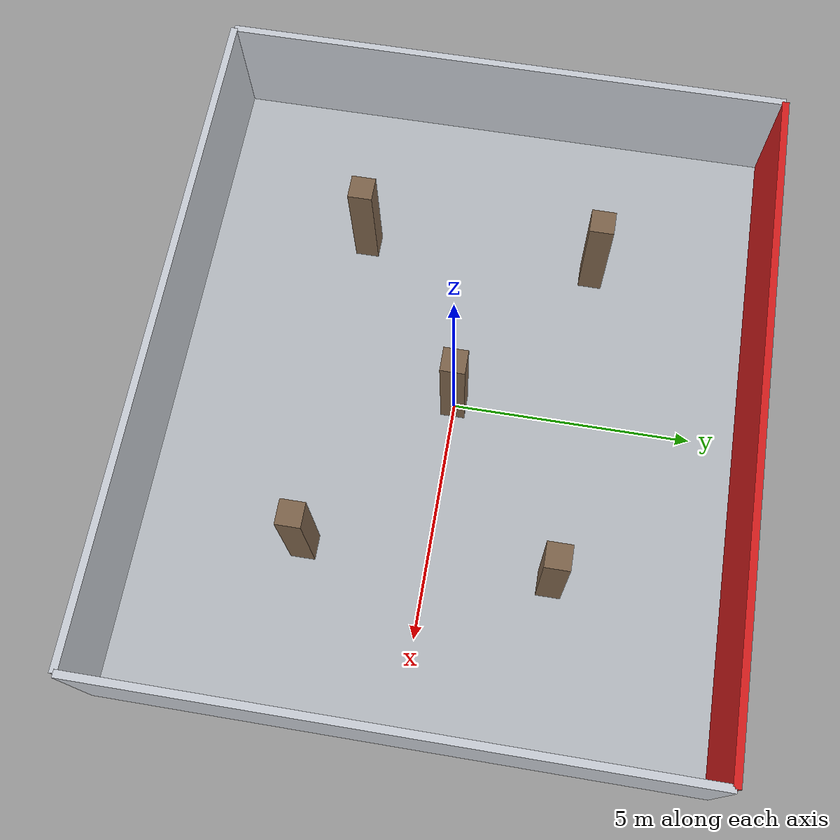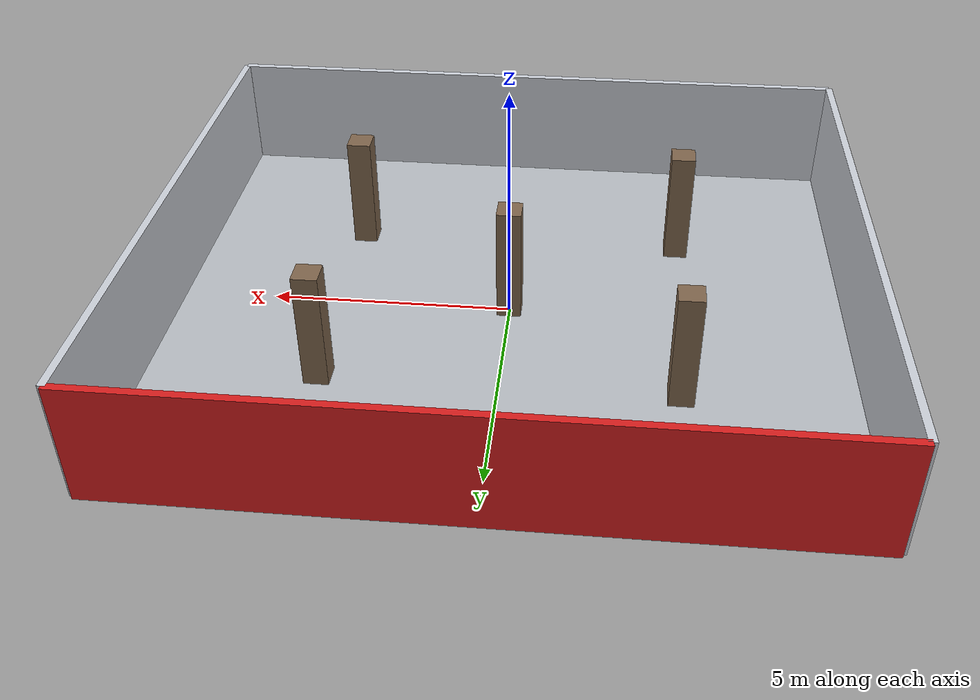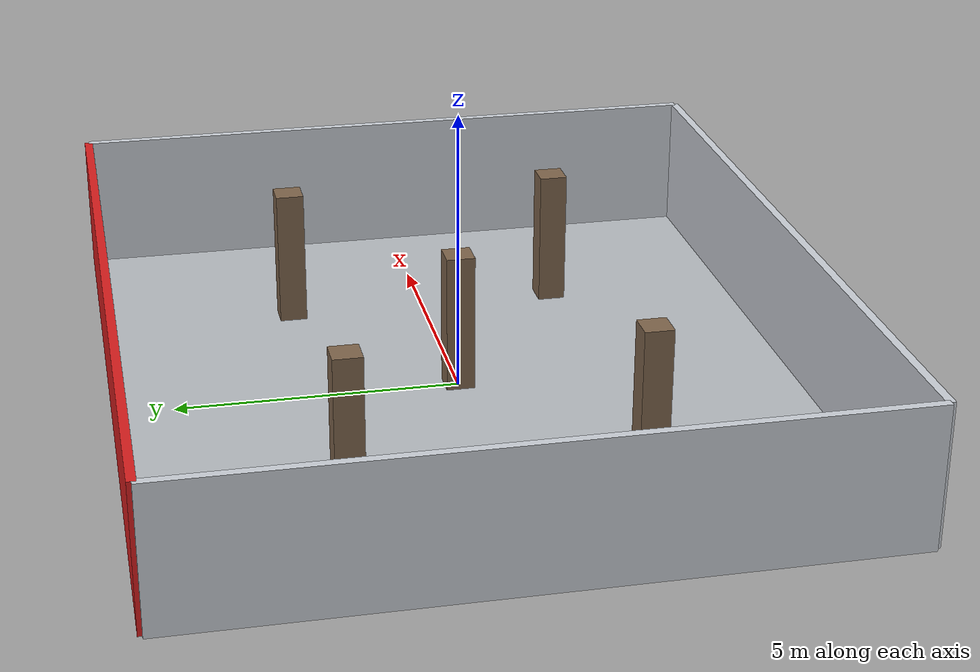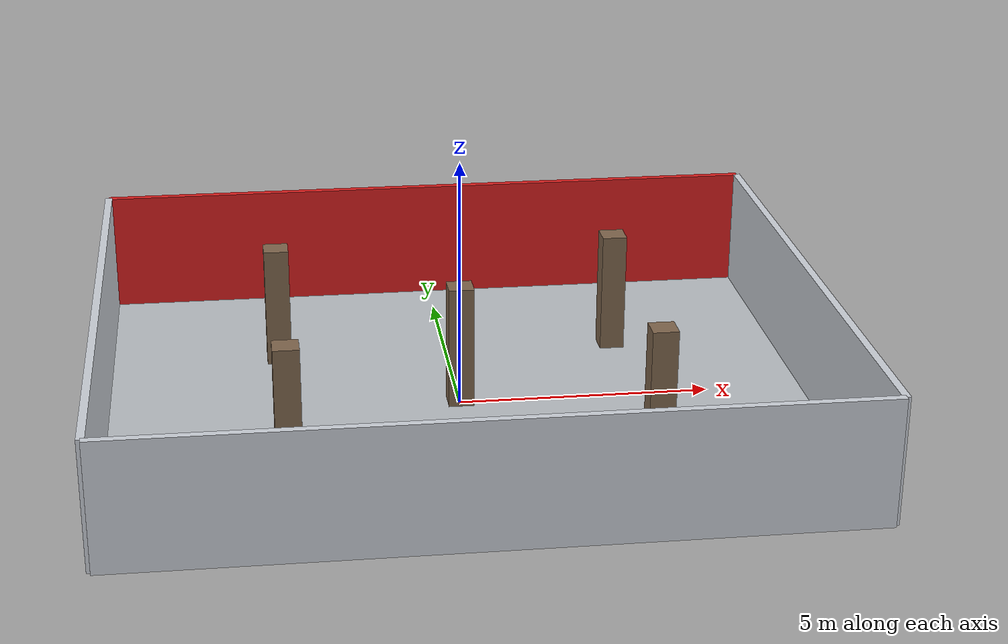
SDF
<sdf version="1.9">
 <world name="open_hall_columns">
  <physics name="1ms" type="ignored">
   <max_step_size>0.001</max_step_size>
   <real_time_factor>1.0</real_time_factor>
  </physics>
  <plugin filename="gz-sim-physics-system" name="gz::sim::systems::Physics"/>
  <plugin filename="gz-sim-scene-broadcaster-system" name="gz::sim::systems::SceneBroadcaster"/>
  <plugin filename="gz-sim-user-commands-system" name="gz::sim::systems::UserCommands"/>
  <plugin filename="gz-sim-sensors-system" name="gz::sim::systems::Sensors">
   <render_engine>ogre2</render_engine>
  </plugin>
  <plugin filename="gz-sim-imu-system" name="gz::sim::systems::Imu"/>
  <plugin filename="gz-sim-navsat-system" name="gz::sim::systems::NavSat"/>
  <spherical_coordinates>
   <latitude_deg>-35.363262</latitude_deg>
   <longitude_deg>149.165237</longitude_deg>
   <elevation>584.0</elevation>
   <heading_deg>0</heading_deg>
   <surface_model>EARTH_WGS84</surface_model>
  </spherical_coordinates>
  <light type="directional" name="main_light">
   <cast_shadows>false</cast_shadows>
   <pose>0 0 10 0 0 0</pose>
   <diffuse>1.0 1.0 1.0 1</diffuse>
   <specular>0.5 0.5 0.5 1</specular>
   <direction>0.1 0.1 -1</direction>
  </light>
  <model name="floor">
   <static>true</static>
   <link name="link">
    <collision name="c"><geometry><box><size>14.0 12.0 0.05</size></box></geometry></collision>
    <visual name="v">
     <geometry><box><size>14.0 12.0 0.05</size></box></geometry>
     <material>
      <ambient>0.72 0.74 0.76 1</ambient>
      <diffuse>0.72 0.74 0.76 1</diffuse>
      <specular>0.1 0.1 0.1 1</specular>
     </material>
    </visual>
   </link>
  </model>
  <model name="outer_south">
   <static>true</static>
   <pose>0.0000 -6.0000 1.250 0 0 0.00000</pose>
   <link name="link">
    <collision name="c"><geometry><box><size>14.0000 0.1500 2.500</size></box></geometry></collision>
    <visual name="v">
     <geometry><box><size>14.0000 0.1500 2.500</size></box></geometry>
     <material>
      <ambient>0.8 0.82 0.85 1</ambient>
      <diffuse>0.8 0.82 0.85 1</diffuse>
      <specular>0.1 0.1 0.1 1</specular>
     </material>
    </visual>
   </link>
  </model>
  <model name="outer_north">
   <static>true</static>
   <pose>0.0000 6.0000 1.250 0 0 0.00000</pose>
   <link name="link">
    <collision name="c"><geometry><box><size>14.0000 0.1500 2.500</size></box></geometry></collision>
    <visual name="v">
     <geometry><box><size>14.0000 0.1500 2.500</size></box></geometry>
     <material>
      <ambient>0.85 0.12 0.12 1</ambient>
      <diffuse>0.85 0.12 0.12 1</diffuse>
      <specular>0.1 0.1 0.1 1</specular>
     </material>
    </visual>
   </link>
  </model>
  <model name="outer_west">
   <static>true</static>
   <pose>-7.0000 0.0000 1.250 0 0 0.00000</pose>
   <link name="link">
    <collision name="c"><geometry><box><size>0.1500 12.0000 2.500</size></box></geometry></collision>
    <visual name="v">
     <geometry><box><size>0.1500 12.0000 2.500</size></box></geometry>
     <material>
      <ambient>0.8 0.82 0.85 1</ambient>
      <diffuse>0.8 0.82 0.85 1</diffuse>
      <specular>0.1 0.1 0.1 1</specular>
     </material>
    </visual>
   </link>
  </model>
  <model name="outer_east">
   <static>true</static>
   <pose>7.0000 0.0000 1.250 0 0 0.00000</pose>
   <link name="link">
    <collision name="c"><geometry><box><size>0.1500 12.0000 2.500</size></box></geometry></collision>
    <visual name="v">
     <geometry><box><size>0.1500 12.0000 2.500</size></box></geometry>
     <material>
      <ambient>0.8 0.82 0.85 1</ambient>
      <diffuse>0.8 0.82 0.85 1</diffuse>
      <specular>0.1 0.1 0.1 1</specular>
     </material>
    </visual>
   </link>
  </model>
  <model name="col_0">
   <static>true</static>
   <pose>-3.5000 -2.5000 1.250 0 0 0.00000</pose>
   <link name="link">
    <collision name="c"><geometry><box><size>0.5000 0.5000 2.500</size></box></geometry></collision>
    <visual name="v">
     <geometry><box><size>0.5000 0.5000 2.500</size></box></geometry>
     <material>
      <ambient>0.5 0.4 0.3 1</ambient>
      <diffuse>0.5 0.4 0.3 1</diffuse>
      <specular>0.1 0.1 0.1 1</specular>
     </material>
    </visual>
   </link>
  </model>
  <model name="col_1">
   <static>true</static>
   <pose>3.5000 -2.5000 1.250 0 0 0.00000</pose>
   <link name="link">
    <collision name="c"><geometry><box><size>0.5000 0.5000 2.500</size></box></geometry></collision>
    <visual name="v">
     <geometry><box><size>0.5000 0.5000 2.500</size></box></geometry>
     <material>
      <ambient>0.5 0.4 0.3 1</ambient>
      <diffuse>0.5 0.4 0.3 1</diffuse>
      <specular>0.1 0.1 0.1 1</specular>
     </material>
    </visual>
   </link>
  </model>
  <model name="col_2">
   <static>true</static>
   <pose>-3.5000 2.5000 1.250 0 0 0.00000</pose>
   <link name="link">
    <collision name="c"><geometry><box><size>0.5000 0.5000 2.500</size></box></geometry></collision>
    <visual name="v">
     <geometry><box><size>0.5000 0.5000 2.500</size></box></geometry>
     <material>
      <ambient>0.5 0.4 0.3 1</ambient>
      <diffuse>0.5 0.4 0.3 1</diffuse>
      <specular>0.1 0.1 0.1 1</specular>
     </material>
    </visual>
   </link>
  </model>
  <model name="col_3">
   <static>true</static>
   <pose>3.5000 2.5000 1.250 0 0 0.00000</pose>
   <link name="link">
    <collision name="c"><geometry><box><size>0.5000 0.5000 2.500</size></box></geometry></collision>
    <visual name="v">
     <geometry><box><size>0.5000 0.5000 2.500</size></box></geometry>
     <material>
      <ambient>0.5 0.4 0.3 1</ambient>
      <diffuse>0.5 0.4 0.3 1</diffuse>
      <specular>0.1 0.1 0.1 1</specular>
     </material>
    </visual>
   </link>
  </model>
  <model name="col_4">
   <static>true</static>
   <pose>0.0000 0.0000 1.250 0 0 0.00000</pose>
   <link name="link">
    <collision name="c"><geometry><box><size>0.5000 0.5000 2.500</size></box></geometry></collision>
    <visual name="v">
     <geometry><box><size>0.5000 0.5000 2.500</size></box></geometry>
     <material>
      <ambient>0.5 0.4 0.3 1</ambient>
      <diffuse>0.5 0.4 0.3 1</diffuse>
      <specular>0.1 0.1 0.1 1</specular>
     </material>
    </visual>
   </link>
  </model>
 </world>
</sdf>
